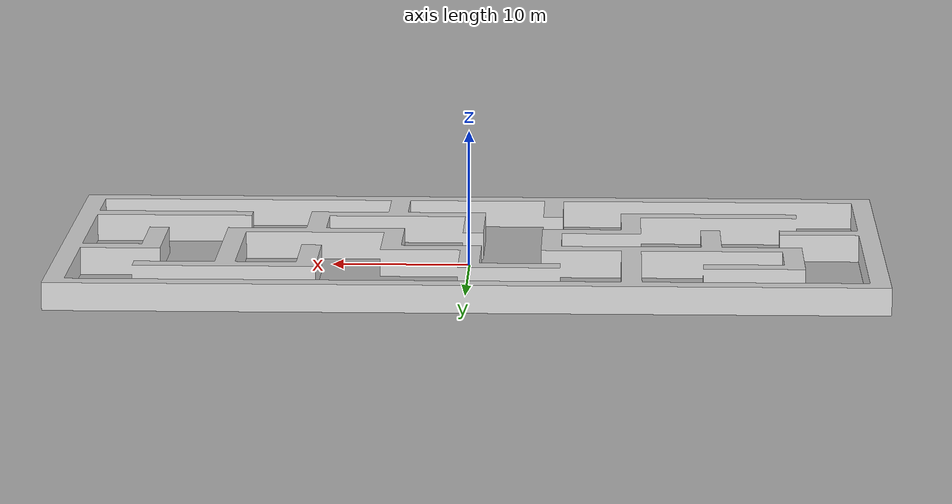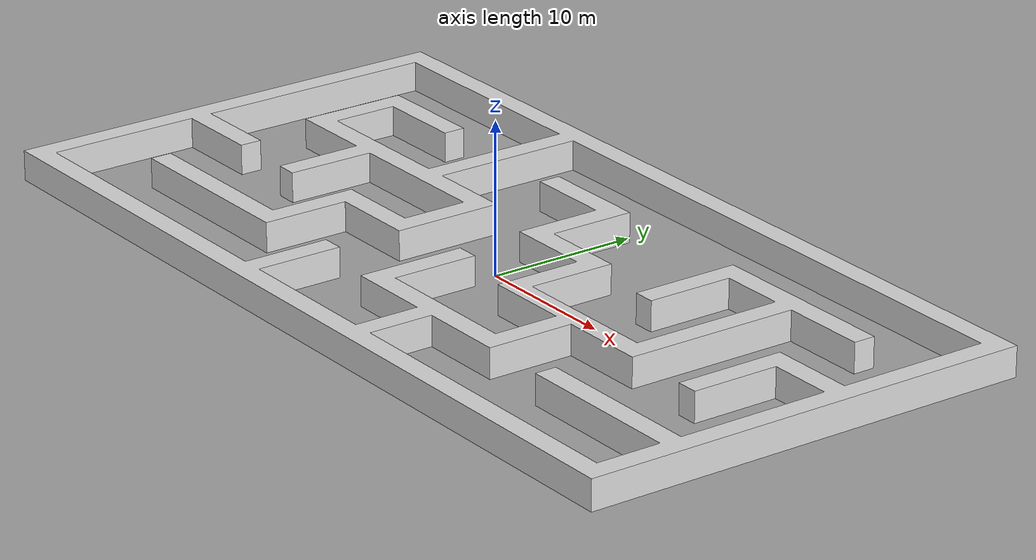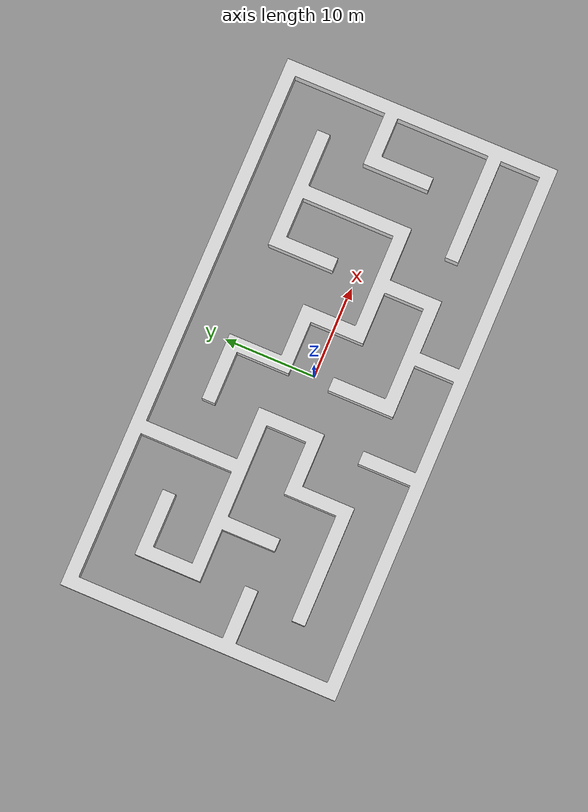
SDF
<?xml version="1.0" ?>
<sdf version="1.6">
  <model name="maze">
    <static>true</static>
    <link name="maze_link">
      <pose>-30 -15 0 0 0 0</pose>
      <visual name="maze_visual">
        <geometry>
          <mesh>
            <uri>model://maze_world/meshes/maze.dae</uri>
            <scale>0.05 0.05 0.01</scale>
          </mesh>
        </geometry>
      </visual>
      <collision name="maze_collision">
        <geometry>
          <mesh>
            <uri>model://maze_world/meshes/maze.dae</uri>
            <scale>0.05 0.05 0.01</scale>
          </mesh>
        </geometry>
      </collision>
    </link>
  </model>
</sdf>
